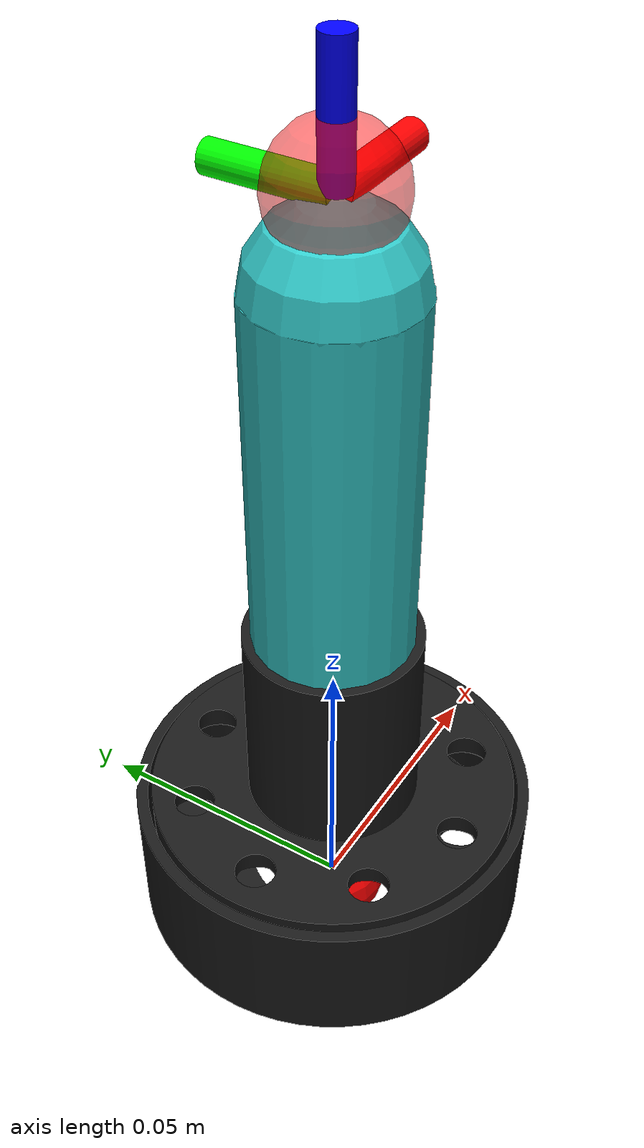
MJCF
<mujoco model="soft_pestle_jig">
	<asset>
		<mesh name="pestle" file="meshes/soft_pestle_jig/inner.stl" scale="1 1 1" />
		<mesh name="pestle_cage" file="meshes/soft_pestle_jig/outer.stl" scale="0.001 0.001 0.001" />
		<texture builtin="gradient" height="256" rgb1=".9 .9 1." rgb2=".2 .3 .4" type="skybox" width="256" />
		<texture file="../textures/light-gray-floor-tile.png" type="2d" name="texplane" />
		<material name="floorplane" reflectance="0.01" shininess="0.0" specular="0.0" texrepeat="2 2" texture="texplane" texuniform="true" />
	</asset>
	<default>
		<default class="pestle_visual">
			<geom group="1" rgba="0.1 0.1 0.1 1" />
		</default>
		<default class="pestle_collision">
			<geom group="0" solimp="0.998 0.998 0.001" solref="0.02 1" density="50" friction="0.95 0.3 0.1" condim="4" rgba="0.1 0.1 0.1 0.1" priority="100"/>
		</default>
	</default>
	<worldbody>
		<body name="pestle_body" pos="0 0 0" quat="1 0 0 0">
			<site name="ft_frame" pos="0 0 0" quat="0 0 1 0" size="0.01 0.01 0.01" rgba="1 0 0 1" type="sphere" group="1" />
			<!-- This site was added for visualization. -->
			<body name="eef2" pos="0 0 0.136" quat="0 0 1 0"/>
			<body name="eef" pos="0 0 0.136" quat="1 0 0 0">
				<site name="grip_site" pos="0 0 0.0" size="0.01 0.01 0.01" rgba="1 0 0 0.5" type="sphere" group="1" />
				<site name="ee_x" pos="0.01 0 0" size="0.0025 .01" quat="0.707105  0 0.707108 0 " rgba="1 0 0 1" type="cylinder" group="1" />
				<site name="ee_y" pos="0 0.01 0" size="0.0025 .01" quat="0.707105 0.707108 0 0" rgba="0 1 0 1" type="cylinder" group="1" />
				<site name="ee_z" pos="0 0 0.01" size="0.0025 .01" quat="1 0 0 0" rgba="0 0 1 1" type="cylinder" group="1" />
				<!-- This site was added for visualization. -->
				<site name="grip_site_cylinder" pos="0 0 0" size="0.005 1" rgba="0 1 0 0" type="cylinder" group="1" />
			</body>
			<body name="pestle_jig">
				<geom pos="0 0 0" quat="0.707107 0 0 0.707107" type="mesh" mesh="pestle_cage" name="pestle_cage_visualization" class="pestle_visual" />
				<geom pos="0 0 0" quat="0.707107 0 0 0.707107" type="mesh" mesh="pestle_cage" name="pestle_cage_collision" class="pestle_collision"/>

				<body name="pestle_jig_body" pos="0 0 0.02" quat="0.707107 0 0 0.707107">
					<inertial pos="0 0 0.08" mass="3e-2" diaginertia="1e-2 1e-2 1e-2" />

					<joint name="spring_z" axis="0 0 1" type="slide" stiffness="5000" damping="10.0" range="-0.005 0.0" frictionloss="1.0" />

					<geom pos="0 0 0" type="mesh" mesh="pestle" name="pestle_inner_visualization" class="pestle_visual" />
					<geom pos="0 0 0" type="mesh" mesh="pestle" name="pestle_inner_collision" class="pestle_collision"/>
					<geom type="capsule" size="0.0135" fromto="0 0 0.02 0 0 0.102" name="pestle_visualization" group="1" rgba=".2 .8 .8 1" />
					<geom type="capsule" size="0.0135" fromto="0 0 0.02 0 0 0.102" name="pestle_collision" class="pestle_collision"/>
				</body>
			</body>
		</body>
	</worldbody>
	<sensor>
		<force name="force_ee" site="ft_frame" />
		<torque name="torque_ee" site="ft_frame" />
	</sensor>
</mujoco>
